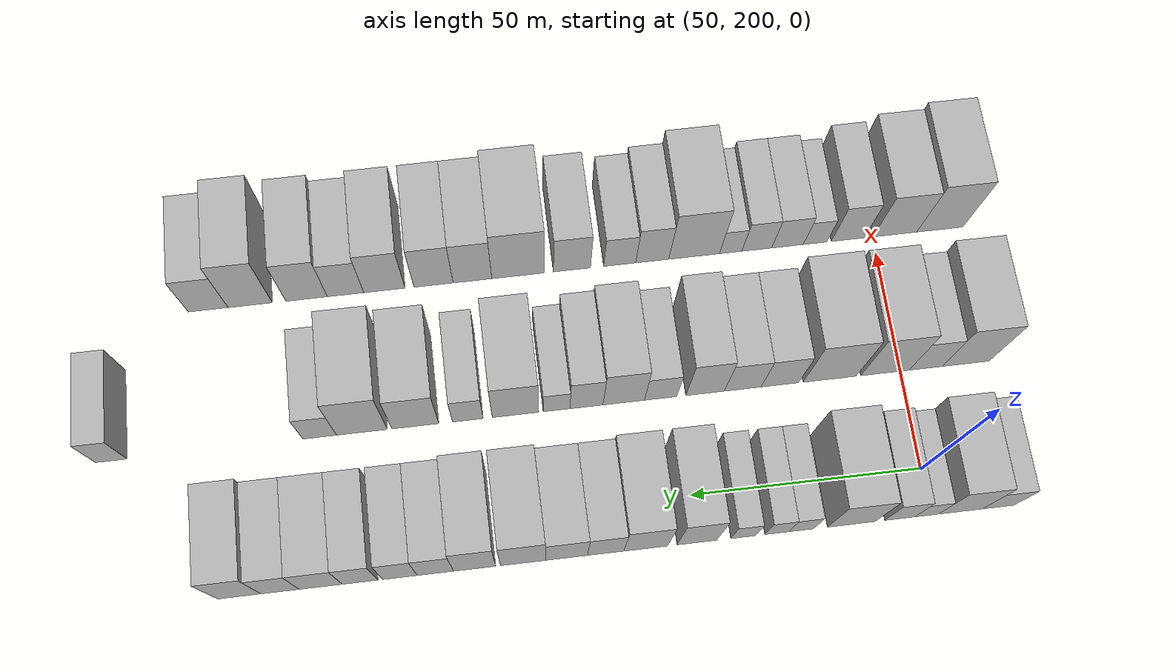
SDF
<sdf version="1.6">
 <world name="default">
  <model name="building_58">
   <static>1</static>
   <pose>50.0000 185.4232 0 0.000000 0.000000 0.000000</pose>
   <link name="link">
    <pose>0 0 7.50 0 0 0</pose>
    <collision name="collision"><geometry><box><size>20.0000 6.7846 15.0000</size></box></geometry></collision>
    <visual name="visual">
     <cast_shadows>0</cast_shadows>
     <geometry><box><size>20.0000 6.7846 15.0000</size></box></geometry>
     <material>
      <script>
       <uri>model://HANNAS_wall/materials/scripts</uri>
       <uri>model://HANNAS_wall/materials/textures</uri>
       <name>vrc/HANNAS_wall</name>
      </script>
     </material>
    </visual>
   </link>
  </model>
  <model name="building_59">
   <static>1</static>
   <pose>50.0000 193.5776 0 0.000000 0.000000 0.000000</pose>
   <link name="link">
    <pose>0 0 10.50 0 0 0</pose>
    <collision name="collision"><geometry><box><size>20.0000 9.5242 21.0000</size></box></geometry></collision>
    <visual name="visual">
     <cast_shadows>0</cast_shadows>
     <geometry><box><size>20.0000 9.5242 21.0000</size></box></geometry>
     <material>
      <script>
       <uri>model://HANNAS_wall/materials/scripts</uri>
       <uri>model://HANNAS_wall/materials/textures</uri>
       <name>vrc/HANNAS_wall</name>
      </script>
     </material>
    </visual>
   </link>
  </model>
  <model name="building_60">
   <static>1</static>
   <pose>50.0000 200.9008 0 0.000000 0.000000 0.000000</pose>
   <link name="link">
    <pose>0 0 6.00 0 0 0</pose>
    <collision name="collision"><geometry><box><size>20.0000 5.1223 12.0000</size></box></geometry></collision>
    <visual name="visual">
     <cast_shadows>0</cast_shadows>
     <geometry><box><size>20.0000 5.1223 12.0000</size></box></geometry>
     <material>
      <script>
       <uri>model://HANNAS_wall/materials/scripts</uri>
       <uri>model://HANNAS_wall/materials/textures</uri>
       <name>vrc/HANNAS_wall</name>
      </script>
     </material>
    </visual>
   </link>
  </model>
  <model name="building_61">
   <static>1</static>
   <pose>50.0000 206.7048 0 0.000000 0.000000 0.000000</pose>
   <link name="link">
    <pose>0 0 7.50 0 0 0</pose>
    <collision name="collision"><geometry><box><size>20.0000 6.4855 15.0000</size></box></geometry></collision>
    <visual name="visual">
     <cast_shadows>0</cast_shadows>
     <geometry><box><size>20.0000 6.4855 15.0000</size></box></geometry>
     <material>
      <script>
       <uri>model://HANNAS_wall/materials/scripts</uri>
       <uri>model://HANNAS_wall/materials/textures</uri>
       <name>vrc/HANNAS_wall</name>
      </script>
     </material>
    </visual>
   </link>
  </model>
  <model name="building_62">
   <static>1</static>
   <pose>50.0000 217.0967 0 0.000000 0.000000 0.000000</pose>
   <link name="link">
    <pose>0 0 10.50 0 0 0</pose>
    <collision name="collision"><geometry><box><size>20.0000 10.2983 21.0000</size></box></geometry></collision>
    <visual name="visual">
     <cast_shadows>0</cast_shadows>
     <geometry><box><size>20.0000 10.2983 21.0000</size></box></geometry>
     <material>
      <script>
       <uri>model://HANNAS_wall/materials/scripts</uri>
       <uri>model://HANNAS_wall/materials/textures</uri>
       <name>vrc/HANNAS_wall</name>
      </script>
     </material>
    </visual>
   </link>
  </model>
  <model name="building_63">
   <static>1</static>
   <pose>50.0000 227.8869 0 0.000000 0.000000 0.000000</pose>
   <link name="link">
    <pose>0 0 6.00 0 0 0</pose>
    <collision name="collision"><geometry><box><size>20.0000 5.2821 12.0000</size></box></geometry></collision>
    <visual name="visual">
     <cast_shadows>0</cast_shadows>
     <geometry><box><size>20.0000 5.2821 12.0000</size></box></geometry>
     <material>
      <script>
       <uri>model://HANNAS_wall/materials/scripts</uri>
       <uri>model://HANNAS_wall/materials/textures</uri>
       <name>vrc/HANNAS_wall</name>
      </script>
     </material>
    </visual>
   </link>
  </model>
  <model name="building_64">
   <static>1</static>
   <pose>50.0000 233.0840 0 0.000000 0.000000 0.000000</pose>
   <link name="link">
    <pose>0 0 6.00 0 0 0</pose>
    <collision name="collision"><geometry><box><size>20.0000 5.1121 12.0000</size></box></geometry></collision>
    <visual name="visual">
     <cast_shadows>0</cast_shadows>
     <geometry><box><size>20.0000 5.1121 12.0000</size></box></geometry>
     <material>
      <script>
       <uri>model://HANNAS_wall/materials/scripts</uri>
       <uri>model://HANNAS_wall/materials/textures</uri>
       <name>vrc/HANNAS_wall</name>
      </script>
     </material>
    </visual>
   </link>
  </model>
  <model name="building_65">
   <static>1</static>
   <pose>50.0000 240.2675 0 0.000000 0.000000 0.000000</pose>
   <link name="link">
    <pose>0 0 6.00 0 0 0</pose>
    <collision name="collision"><geometry><box><size>20.0000 5.2549 12.0000</size></box></geometry></collision>
    <visual name="visual">
     <cast_shadows>0</cast_shadows>
     <geometry><box><size>20.0000 5.2549 12.0000</size></box></geometry>
     <material>
      <script>
       <uri>model://HANNAS_wall/materials/scripts</uri>
       <uri>model://HANNAS_wall/materials/textures</uri>
       <name>vrc/HANNAS_wall</name>
      </script>
     </material>
    </visual>
   </link>
  </model>
  <model name="building_66">
   <static>1</static>
   <pose>50.0000 250.1081 0 0.000000 0.000000 0.000000</pose>
   <link name="link">
    <pose>0 0 10.50 0 0 0</pose>
    <collision name="collision"><geometry><box><size>20.0000 8.4265 21.0000</size></box></geometry></collision>
    <visual name="visual">
     <cast_shadows>0</cast_shadows>
     <geometry><box><size>20.0000 8.4265 21.0000</size></box></geometry>
     <material>
      <script>
       <uri>model://HANNAS_wall/materials/scripts</uri>
       <uri>model://HANNAS_wall/materials/textures</uri>
       <name>vrc/HANNAS_wall</name>
      </script>
     </material>
    </visual>
   </link>
  </model>
  <model name="building_67">
   <static>1</static>
   <pose>50.0000 260.9819 0 0.000000 0.000000 0.000000</pose>
   <link name="link">
    <pose>0 0 10.50 0 0 0</pose>
    <collision name="collision"><geometry><box><size>20.0000 9.3210 21.0000</size></box></geometry></collision>
    <visual name="visual">
     <cast_shadows>0</cast_shadows>
     <geometry><box><size>20.0000 9.3210 21.0000</size></box></geometry>
     <material>
      <script>
       <uri>model://HANNAS_wall/materials/scripts</uri>
       <uri>model://HANNAS_wall/materials/textures</uri>
       <name>vrc/HANNAS_wall</name>
      </script>
     </material>
    </visual>
   </link>
  </model>
  <model name="building_68">
   <static>1</static>
   <pose>50.0000 269.4737 0 0.000000 0.000000 0.000000</pose>
   <link name="link">
    <pose>0 0 9.00 0 0 0</pose>
    <collision name="collision"><geometry><box><size>20.0000 7.6626 18.0000</size></box></geometry></collision>
    <visual name="visual">
     <cast_shadows>0</cast_shadows>
     <geometry><box><size>20.0000 7.6626 18.0000</size></box></geometry>
     <material>
      <script>
       <uri>model://HANNAS_wall/materials/scripts</uri>
       <uri>model://HANNAS_wall/materials/textures</uri>
       <name>vrc/HANNAS_wall</name>
      </script>
     </material>
    </visual>
   </link>
  </model>
  <model name="building_69">
   <static>1</static>
   <pose>50.0000 277.7364 0 0.000000 0.000000 0.000000</pose>
   <link name="link">
    <pose>0 0 9.00 0 0 0</pose>
    <collision name="collision"><geometry><box><size>20.0000 8.8629 18.0000</size></box></geometry></collision>
    <visual name="visual">
     <cast_shadows>0</cast_shadows>
     <geometry><box><size>20.0000 8.8629 18.0000</size></box></geometry>
     <material>
      <script>
       <uri>model://HANNAS_wall/materials/scripts</uri>
       <uri>model://HANNAS_wall/materials/textures</uri>
       <name>vrc/HANNAS_wall</name>
      </script>
     </material>
    </visual>
   </link>
  </model>
  <model name="building_70">
   <static>1</static>
   <pose>50.0000 286.9182 0 0.000000 0.000000 0.000000</pose>
   <link name="link">
    <pose>0 0 10.50 0 0 0</pose>
    <collision name="collision"><geometry><box><size>20.0000 9.5007 21.0000</size></box></geometry></collision>
    <visual name="visual">
     <cast_shadows>0</cast_shadows>
     <geometry><box><size>20.0000 9.5007 21.0000</size></box></geometry>
     <material>
      <script>
       <uri>model://HANNAS_wall/materials/scripts</uri>
       <uri>model://HANNAS_wall/materials/textures</uri>
       <name>vrc/HANNAS_wall</name>
      </script>
     </material>
    </visual>
   </link>
  </model>
  <model name="building_71">
   <static>1</static>
   <pose>50.0000 297.1002 0 0.000000 0.000000 0.000000</pose>
   <link name="link">
    <pose>0 0 10.50 0 0 0</pose>
    <collision name="collision"><geometry><box><size>20.0000 8.8633 21.0000</size></box></geometry></collision>
    <visual name="visual">
     <cast_shadows>0</cast_shadows>
     <geometry><box><size>20.0000 8.8633 21.0000</size></box></geometry>
     <material>
      <script>
       <uri>model://HANNAS_wall/materials/scripts</uri>
       <uri>model://HANNAS_wall/materials/textures</uri>
       <name>vrc/HANNAS_wall</name>
      </script>
     </material>
    </visual>
   </link>
  </model>
  <model name="building_72">
   <static>1</static>
   <pose>50.0000 305.3325 0 0.000000 0.000000 0.000000</pose>
   <link name="link">
    <pose>0 0 9.00 0 0 0</pose>
    <collision name="collision"><geometry><box><size>20.0000 7.6013 18.0000</size></box></geometry></collision>
    <visual name="visual">
     <cast_shadows>0</cast_shadows>
     <geometry><box><size>20.0000 7.6013 18.0000</size></box></geometry>
     <material>
      <script>
       <uri>model://HANNAS_wall/materials/scripts</uri>
       <uri>model://HANNAS_wall/materials/textures</uri>
       <name>vrc/HANNAS_wall</name>
      </script>
     </material>
    </visual>
   </link>
  </model>
  <model name="building_73">
   <static>1</static>
   <pose>50.0000 312.7372 0 0.000000 0.000000 0.000000</pose>
   <link name="link">
    <pose>0 0 9.00 0 0 0</pose>
    <collision name="collision"><geometry><box><size>20.0000 7.2082 18.0000</size></box></geometry></collision>
    <visual name="visual">
     <cast_shadows>0</cast_shadows>
     <geometry><box><size>20.0000 7.2082 18.0000</size></box></geometry>
     <material>
      <script>
       <uri>model://HANNAS_wall/materials/scripts</uri>
       <uri>model://HANNAS_wall/materials/textures</uri>
       <name>vrc/HANNAS_wall</name>
      </script>
     </material>
    </visual>
   </link>
  </model>
  <model name="building_74">
   <static>1</static>
   <pose>50.0000 321.0583 0 0.000000 0.000000 0.000000</pose>
   <link name="link">
    <pose>0 0 9.00 0 0 0</pose>
    <collision name="collision"><geometry><box><size>20.0000 7.4340 18.0000</size></box></geometry></collision>
    <visual name="visual">
     <cast_shadows>0</cast_shadows>
     <geometry><box><size>20.0000 7.4340 18.0000</size></box></geometry>
     <material>
      <script>
       <uri>model://HANNAS_wall/materials/scripts</uri>
       <uri>model://HANNAS_wall/materials/textures</uri>
       <name>vrc/HANNAS_wall</name>
      </script>
     </material>
    </visual>
   </link>
  </model>
  <model name="building_75">
   <static>1</static>
   <pose>50.0000 329.2575 0 0.000000 0.000000 0.000000</pose>
   <link name="link">
    <pose>0 0 9.00 0 0 0</pose>
    <collision name="collision"><geometry><box><size>20.0000 8.9646 18.0000</size></box></geometry></collision>
    <visual name="visual">
     <cast_shadows>0</cast_shadows>
     <geometry><box><size>20.0000 8.9646 18.0000</size></box></geometry>
     <material>
      <script>
       <uri>model://HANNAS_wall/materials/scripts</uri>
       <uri>model://HANNAS_wall/materials/textures</uri>
       <name>vrc/HANNAS_wall</name>
      </script>
     </material>
    </visual>
   </link>
  </model>
  <model name="building_76">
   <static>1</static>
   <pose>50.0000 337.7094 0 0.000000 0.000000 0.000000</pose>
   <link name="link">
    <pose>0 0 9.00 0 0 0</pose>
    <collision name="collision"><geometry><box><size>20.0000 7.9392 18.0000</size></box></geometry></collision>
    <visual name="visual">
     <cast_shadows>0</cast_shadows>
     <geometry><box><size>20.0000 7.9392 18.0000</size></box></geometry>
     <material>
      <script>
       <uri>model://HANNAS_wall/materials/scripts</uri>
       <uri>model://HANNAS_wall/materials/textures</uri>
       <name>vrc/HANNAS_wall</name>
      </script>
     </material>
    </visual>
   </link>
  </model>
  <model name="building_77">
   <static>1</static>
   <pose>50.0000 346.1670 0 0.000000 0.000000 0.000000</pose>
   <link name="link">
    <pose>0 0 10.50 0 0 0</pose>
    <collision name="collision"><geometry><box><size>20.0000 8.9759 21.0000</size></box></geometry></collision>
    <visual name="visual">
     <cast_shadows>0</cast_shadows>
     <geometry><box><size>20.0000 8.9759 21.0000</size></box></geometry>
     <material>
      <script>
       <uri>model://HANNAS_wall/materials/scripts</uri>
       <uri>model://HANNAS_wall/materials/textures</uri>
       <name>vrc/HANNAS_wall</name>
      </script>
     </material>
    </visual>
   </link>
  </model>
  <model name="building_129">
   <static>1</static>
   <pose>82.0000 185.4447 0 0.000000 0.000000 0.000000</pose>
   <link name="link">
    <pose>0 0 12.00 0 0 0</pose>
    <collision name="collision"><geometry><box><size>20.0000 10.5681 24.0000</size></box></geometry></collision>
    <visual name="visual">
     <cast_shadows>0</cast_shadows>
     <geometry><box><size>20.0000 10.5681 24.0000</size></box></geometry>
     <material>
      <script>
       <uri>model://HANNAS_wall/materials/scripts</uri>
       <uri>model://HANNAS_wall/materials/textures</uri>
       <name>vrc/HANNAS_wall</name>
      </script>
     </material>
    </visual>
   </link>
  </model>
  <model name="building_130">
   <static>1</static>
   <pose>82.0000 194.4169 0 0.000000 0.000000 0.000000</pose>
   <link name="link">
    <pose>0 0 9.00 0 0 0</pose>
    <collision name="collision"><geometry><box><size>20.0000 7.3764 18.0000</size></box></geometry></collision>
    <visual name="visual">
     <cast_shadows>0</cast_shadows>
     <geometry><box><size>20.0000 7.3764 18.0000</size></box></geometry>
     <material>
      <script>
       <uri>model://HANNAS_wall/materials/scripts</uri>
       <uri>model://HANNAS_wall/materials/textures</uri>
       <name>vrc/HANNAS_wall</name>
      </script>
     </material>
    </visual>
   </link>
  </model>
  <model name="building_131">
   <static>1</static>
   <pose>82.0000 203.5030 0 0.000000 0.000000 0.000000</pose>
   <link name="link">
    <pose>0 0 12.00 0 0 0</pose>
    <collision name="collision"><geometry><box><size>20.0000 10.7958 24.0000</size></box></geometry></collision>
    <visual name="visual">
     <cast_shadows>0</cast_shadows>
     <geometry><box><size>20.0000 10.7958 24.0000</size></box></geometry>
     <material>
      <script>
       <uri>model://HANNAS_wall/materials/scripts</uri>
       <uri>model://HANNAS_wall/materials/textures</uri>
       <name>vrc/HANNAS_wall</name>
      </script>
     </material>
    </visual>
   </link>
  </model>
  <model name="building_132">
   <static>1</static>
   <pose>82.0000 215.8024 0 0.000000 0.000000 0.000000</pose>
   <link name="link">
    <pose>0 0 12.00 0 0 0</pose>
    <collision name="collision"><geometry><box><size>20.0000 11.8030 24.0000</size></box></geometry></collision>
    <visual name="visual">
     <cast_shadows>0</cast_shadows>
     <geometry><box><size>20.0000 11.8030 24.0000</size></box></geometry>
     <material>
      <script>
       <uri>model://HANNAS_wall/materials/scripts</uri>
       <uri>model://HANNAS_wall/materials/textures</uri>
       <name>vrc/HANNAS_wall</name>
      </script>
     </material>
    </visual>
   </link>
  </model>
  <model name="building_133">
   <static>1</static>
   <pose>82.0000 226.8638 0 0.000000 0.000000 0.000000</pose>
   <link name="link">
    <pose>0 0 9.00 0 0 0</pose>
    <collision name="collision"><geometry><box><size>20.0000 8.3197 18.0000</size></box></geometry></collision>
    <visual name="visual">
     <cast_shadows>0</cast_shadows>
     <geometry><box><size>20.0000 8.3197 18.0000</size></box></geometry>
     <material>
      <script>
       <uri>model://HANNAS_wall/materials/scripts</uri>
       <uri>model://HANNAS_wall/materials/textures</uri>
       <name>vrc/HANNAS_wall</name>
      </script>
     </material>
    </visual>
   </link>
  </model>
  <model name="building_134">
   <static>1</static>
   <pose>82.0000 235.0988 0 0.000000 0.000000 0.000000</pose>
   <link name="link">
    <pose>0 0 9.00 0 0 0</pose>
    <collision name="collision"><geometry><box><size>20.0000 8.1504 18.0000</size></box></geometry></collision>
    <visual name="visual">
     <cast_shadows>0</cast_shadows>
     <geometry><box><size>20.0000 8.1504 18.0000</size></box></geometry>
     <material>
      <script>
       <uri>model://HANNAS_wall/materials/scripts</uri>
       <uri>model://HANNAS_wall/materials/textures</uri>
       <name>vrc/HANNAS_wall</name>
      </script>
     </material>
    </visual>
   </link>
  </model>
  <model name="building_135">
   <static>1</static>
   <pose>82.0000 243.4073 0 0.000000 0.000000 0.000000</pose>
   <link name="link">
    <pose>0 0 10.50 0 0 0</pose>
    <collision name="collision"><geometry><box><size>20.0000 8.4666 21.0000</size></box></geometry></collision>
    <visual name="visual">
     <cast_shadows>0</cast_shadows>
     <geometry><box><size>20.0000 8.4666 21.0000</size></box></geometry>
     <material>
      <script>
       <uri>model://HANNAS_wall/materials/scripts</uri>
       <uri>model://HANNAS_wall/materials/textures</uri>
       <name>vrc/HANNAS_wall</name>
      </script>
     </material>
    </visual>
   </link>
  </model>
  <model name="building_136">
   <static>1</static>
   <pose>82.0000 253.1971 0 0.000000 0.000000 0.000000</pose>
   <link name="link">
    <pose>0 0 7.50 0 0 0</pose>
    <collision name="collision"><geometry><box><size>20.0000 7.1131 15.0000</size></box></geometry></collision>
    <visual name="visual">
     <cast_shadows>0</cast_shadows>
     <geometry><box><size>20.0000 7.1131 15.0000</size></box></geometry>
     <material>
      <script>
       <uri>model://HANNAS_wall/materials/scripts</uri>
       <uri>model://HANNAS_wall/materials/textures</uri>
       <name>vrc/HANNAS_wall</name>
      </script>
     </material>
    </visual>
   </link>
  </model>
  <model name="building_137">
   <static>1</static>
   <pose>82.0000 261.3090 0 0.000000 0.000000 0.000000</pose>
   <link name="link">
    <pose>0 0 10.50 0 0 0</pose>
    <collision name="collision"><geometry><box><size>20.0000 9.1106 21.0000</size></box></geometry></collision>
    <visual name="visual">
     <cast_shadows>0</cast_shadows>
     <geometry><box><size>20.0000 9.1106 21.0000</size></box></geometry>
     <material>
      <script>
       <uri>model://HANNAS_wall/materials/scripts</uri>
       <uri>model://HANNAS_wall/materials/textures</uri>
       <name>vrc/HANNAS_wall</name>
      </script>
     </material>
    </visual>
   </link>
  </model>
  <model name="building_138">
   <static>1</static>
   <pose>82.0000 269.4827 0 0.000000 0.000000 0.000000</pose>
   <link name="link">
    <pose>0 0 9.00 0 0 0</pose>
    <collision name="collision"><geometry><box><size>20.0000 7.2368 18.0000</size></box></geometry></collision>
    <visual name="visual">
     <cast_shadows>0</cast_shadows>
     <geometry><box><size>20.0000 7.2368 18.0000</size></box></geometry>
     <material>
      <script>
       <uri>model://HANNAS_wall/materials/scripts</uri>
       <uri>model://HANNAS_wall/materials/textures</uri>
       <name>vrc/HANNAS_wall</name>
      </script>
     </material>
    </visual>
   </link>
  </model>
  <model name="building_139">
   <static>1</static>
   <pose>82.0000 276.0170 0 0.000000 0.000000 0.000000</pose>
   <link name="link">
    <pose>0 0 6.00 0 0 0</pose>
    <collision name="collision"><geometry><box><size>20.0000 5.8317 12.0000</size></box></geometry></collision>
    <visual name="visual">
     <cast_shadows>0</cast_shadows>
     <geometry><box><size>20.0000 5.8317 12.0000</size></box></geometry>
     <material>
      <script>
       <uri>model://HANNAS_wall/materials/scripts</uri>
       <uri>model://HANNAS_wall/materials/textures</uri>
       <name>vrc/HANNAS_wall</name>
      </script>
     </material>
    </visual>
   </link>
  </model>
  <model name="building_140">
   <static>1</static>
   <pose>82.0000 284.9905 0 0.000000 0.000000 0.000000</pose>
   <link name="link">
    <pose>0 0 10.50 0 0 0</pose>
    <collision name="collision"><geometry><box><size>20.0000 10.1153 21.0000</size></box></geometry></collision>
    <visual name="visual">
     <cast_shadows>0</cast_shadows>
     <geometry><box><size>20.0000 10.1153 21.0000</size></box></geometry>
     <material>
      <script>
       <uri>model://HANNAS_wall/materials/scripts</uri>
       <uri>model://HANNAS_wall/materials/textures</uri>
       <name>vrc/HANNAS_wall</name>
      </script>
     </material>
    </visual>
   </link>
  </model>
  <model name="building_141">
   <static>1</static>
   <pose>82.0000 295.3681 0 0.000000 0.000000 0.000000</pose>
   <link name="link">
    <pose>0 0 7.50 0 0 0</pose>
    <collision name="collision"><geometry><box><size>20.0000 6.6398 15.0000</size></box></geometry></collision>
    <visual name="visual">
     <cast_shadows>0</cast_shadows>
     <geometry><box><size>20.0000 6.6398 15.0000</size></box></geometry>
     <material>
      <script>
       <uri>model://HANNAS_wall/materials/scripts</uri>
       <uri>model://HANNAS_wall/materials/textures</uri>
       <name>vrc/HANNAS_wall</name>
      </script>
     </material>
    </visual>
   </link>
  </model>
  <model name="building_142">
   <static>1</static>
   <pose>82.0000 306.7674 0 0.000000 0.000000 0.000000</pose>
   <link name="link">
    <pose>0 0 10.50 0 0 0</pose>
    <collision name="collision"><geometry><box><size>20.0000 10.1589 21.0000</size></box></geometry></collision>
    <visual name="visual">
     <cast_shadows>0</cast_shadows>
     <geometry><box><size>20.0000 10.1589 21.0000</size></box></geometry>
     <material>
      <script>
       <uri>model://HANNAS_wall/materials/scripts</uri>
       <uri>model://HANNAS_wall/materials/textures</uri>
       <name>vrc/HANNAS_wall</name>
      </script>
     </material>
    </visual>
   </link>
  </model>
  <model name="building_143">
   <static>1</static>
   <pose>82.0000 318.3511 0 0.000000 0.000000 0.000000</pose>
   <link name="link">
    <pose>0 0 12.00 0 0 0</pose>
    <collision name="collision"><geometry><box><size>20.0000 11.0084 24.0000</size></box></geometry></collision>
    <visual name="visual">
     <cast_shadows>0</cast_shadows>
     <geometry><box><size>20.0000 11.0084 24.0000</size></box></geometry>
     <material>
      <script>
       <uri>model://HANNAS_wall/materials/scripts</uri>
       <uri>model://HANNAS_wall/materials/textures</uri>
       <name>vrc/HANNAS_wall</name>
      </script>
     </material>
    </visual>
   </link>
  </model>
  <model name="building_144">
   <static>1</static>
   <pose>82.0000 327.4869 0 0.000000 0.000000 0.000000</pose>
   <link name="link">
    <pose>0 0 7.50 0 0 0</pose>
    <collision name="collision"><geometry><box><size>20.0000 7.2632 15.0000</size></box></geometry></collision>
    <visual name="visual">
     <cast_shadows>0</cast_shadows>
     <geometry><box><size>20.0000 7.2632 15.0000</size></box></geometry>
     <material>
      <script>
       <uri>model://HANNAS_wall/materials/scripts</uri>
       <uri>model://HANNAS_wall/materials/textures</uri>
       <name>vrc/HANNAS_wall</name>
      </script>
     </material>
    </visual>
   </link>
  </model>
  <model name="building_145">
   <static>1</static>
   <pose>82.0000 372.2411 0 0.000000 0.000000 0.000000</pose>
   <link name="link">
    <pose>0 0 7.50 0 0 0</pose>
    <collision name="collision"><geometry><box><size>20.0000 6.7484 15.0000</size></box></geometry></collision>
    <visual name="visual">
     <cast_shadows>0</cast_shadows>
     <geometry><box><size>20.0000 6.7484 15.0000</size></box></geometry>
     <material>
      <script>
       <uri>model://HANNAS_wall/materials/scripts</uri>
       <uri>model://HANNAS_wall/materials/textures</uri>
       <name>vrc/HANNAS_wall</name>
      </script>
     </material>
    </visual>
   </link>
  </model>
  <model name="building_206">
   <static>1</static>
   <pose>114.0000 184.3984 0 0.000000 0.000000 0.000000</pose>
   <link name="link">
    <pose>0 0 12.00 0 0 0</pose>
    <collision name="collision"><geometry><box><size>20.0000 10.6852 24.0000</size></box></geometry></collision>
    <visual name="visual">
     <cast_shadows>0</cast_shadows>
     <geometry><box><size>20.0000 10.6852 24.0000</size></box></geometry>
     <material>
      <script>
       <uri>model://HANNAS_wall/materials/scripts</uri>
       <uri>model://HANNAS_wall/materials/textures</uri>
       <name>vrc/HANNAS_wall</name>
      </script>
     </material>
    </visual>
   </link>
  </model>
  <model name="building_207">
   <static>1</static>
   <pose>114.0000 194.8258 0 0.000000 0.000000 0.000000</pose>
   <link name="link">
    <pose>0 0 10.50 0 0 0</pose>
    <collision name="collision"><geometry><box><size>20.0000 10.1697 21.0000</size></box></geometry></collision>
    <visual name="visual">
     <cast_shadows>0</cast_shadows>
     <geometry><box><size>20.0000 10.1697 21.0000</size></box></geometry>
     <material>
      <script>
       <uri>model://HANNAS_wall/materials/scripts</uri>
       <uri>model://HANNAS_wall/materials/textures</uri>
       <name>vrc/HANNAS_wall</name>
      </script>
     </material>
    </visual>
   </link>
  </model>
  <model name="building_208">
   <static>1</static>
   <pose>114.0000 205.7048 0 0.000000 0.000000 0.000000</pose>
   <link name="link">
    <pose>0 0 9.00 0 0 0</pose>
    <collision name="collision"><geometry><box><size>20.0000 7.5882 18.0000</size></box></geometry></collision>
    <visual name="visual">
     <cast_shadows>0</cast_shadows>
     <geometry><box><size>20.0000 7.5882 18.0000</size></box></geometry>
     <material>
      <script>
       <uri>model://HANNAS_wall/materials/scripts</uri>
       <uri>model://HANNAS_wall/materials/textures</uri>
       <name>vrc/HANNAS_wall</name>
      </script>
     </material>
    </visual>
   </link>
  </model>
  <model name="building_209">
   <static>1</static>
   <pose>114.0000 213.2097 0 0.000000 0.000000 0.000000</pose>
   <link name="link">
    <pose>0 0 6.00 0 0 0</pose>
    <collision name="collision"><geometry><box><size>20.0000 5.4216 12.0000</size></box></geometry></collision>
    <visual name="visual">
     <cast_shadows>0</cast_shadows>
     <geometry><box><size>20.0000 5.4216 12.0000</size></box></geometry>
     <material>
      <script>
       <uri>model://HANNAS_wall/materials/scripts</uri>
       <uri>model://HANNAS_wall/materials/textures</uri>
       <name>vrc/HANNAS_wall</name>
      </script>
     </material>
    </visual>
   </link>
  </model>
  <model name="building_210">
   <static>1</static>
   <pose>114.0000 219.5542 0 0.000000 0.000000 0.000000</pose>
   <link name="link">
    <pose>0 0 7.50 0 0 0</pose>
    <collision name="collision"><geometry><box><size>20.0000 7.2676 15.0000</size></box></geometry></collision>
    <visual name="visual">
     <cast_shadows>0</cast_shadows>
     <geometry><box><size>20.0000 7.2676 15.0000</size></box></geometry>
     <material>
      <script>
       <uri>model://HANNAS_wall/materials/scripts</uri>
       <uri>model://HANNAS_wall/materials/textures</uri>
       <name>vrc/HANNAS_wall</name>
      </script>
     </material>
    </visual>
   </link>
  </model>
  <model name="building_211">
   <static>1</static>
   <pose>114.0000 226.6037 0 0.000000 0.000000 0.000000</pose>
   <link name="link">
    <pose>0 0 7.50 0 0 0</pose>
    <collision name="collision"><geometry><box><size>20.0000 6.8312 15.0000</size></box></geometry></collision>
    <visual name="visual">
     <cast_shadows>0</cast_shadows>
     <geometry><box><size>20.0000 6.8312 15.0000</size></box></geometry>
     <material>
      <script>
       <uri>model://HANNAS_wall/materials/scripts</uri>
       <uri>model://HANNAS_wall/materials/textures</uri>
       <name>vrc/HANNAS_wall</name>
      </script>
     </material>
    </visual>
   </link>
  </model>
  <model name="building_212">
   <static>1</static>
   <pose>114.0000 232.5725 0 0.000000 0.000000 0.000000</pose>
   <link name="link">
    <pose>0 0 6.00 0 0 0</pose>
    <collision name="collision"><geometry><box><size>20.0000 5.1066 12.0000</size></box></geometry></collision>
    <visual name="visual">
     <cast_shadows>0</cast_shadows>
     <geometry><box><size>20.0000 5.1066 12.0000</size></box></geometry>
     <material>
      <script>
       <uri>model://HANNAS_wall/materials/scripts</uri>
       <uri>model://HANNAS_wall/materials/textures</uri>
       <name>vrc/HANNAS_wall</name>
      </script>
     </material>
    </visual>
   </link>
  </model>
  <model name="building_213">
   <static>1</static>
   <pose>114.0000 240.9128 0 0.000000 0.000000 0.000000</pose>
   <link name="link">
    <pose>0 0 12.00 0 0 0</pose>
    <collision name="collision"><geometry><box><size>20.0000 11.5739 24.0000</size></box></geometry></collision>
    <visual name="visual">
     <cast_shadows>0</cast_shadows>
     <geometry><box><size>20.0000 11.5739 24.0000</size></box></geometry>
     <material>
      <script>
       <uri>model://HANNAS_wall/materials/scripts</uri>
       <uri>model://HANNAS_wall/materials/textures</uri>
       <name>vrc/HANNAS_wall</name>
      </script>
     </material>
    </visual>
   </link>
  </model>
  <model name="building_214">
   <static>1</static>
   <pose>114.0000 250.4709 0 0.000000 0.000000 0.000000</pose>
   <link name="link">
    <pose>0 0 9.00 0 0 0</pose>
    <collision name="collision"><geometry><box><size>20.0000 7.5424 18.0000</size></box></geometry></collision>
    <visual name="visual">
     <cast_shadows>0</cast_shadows>
     <geometry><box><size>20.0000 7.5424 18.0000</size></box></geometry>
     <material>
      <script>
       <uri>model://HANNAS_wall/materials/scripts</uri>
       <uri>model://HANNAS_wall/materials/textures</uri>
       <name>vrc/HANNAS_wall</name>
      </script>
     </material>
    </visual>
   </link>
  </model>
  <model name="building_215">
   <static>1</static>
   <pose>114.0000 257.8775 0 0.000000 0.000000 0.000000</pose>
   <link name="link">
    <pose>0 0 7.50 0 0 0</pose>
    <collision name="collision"><geometry><box><size>20.0000 7.2709 15.0000</size></box></geometry></collision>
    <visual name="visual">
     <cast_shadows>0</cast_shadows>
     <geometry><box><size>20.0000 7.2709 15.0000</size></box></geometry>
     <material>
      <script>
       <uri>model://HANNAS_wall/materials/scripts</uri>
       <uri>model://HANNAS_wall/materials/textures</uri>
       <name>vrc/HANNAS_wall</name>
      </script>
     </material>
    </visual>
   </link>
  </model>
  <model name="building_216">
   <static>1</static>
   <pose>114.0000 268.7135 0 0.000000 0.000000 0.000000</pose>
   <link name="link">
    <pose>0 0 9.00 0 0 0</pose>
    <collision name="collision"><geometry><box><size>20.0000 8.4010 18.0000</size></box></geometry></collision>
    <visual name="visual">
     <cast_shadows>0</cast_shadows>
     <geometry><box><size>20.0000 8.4010 18.0000</size></box></geometry>
     <material>
      <script>
       <uri>model://HANNAS_wall/materials/scripts</uri>
       <uri>model://HANNAS_wall/materials/textures</uri>
       <name>vrc/HANNAS_wall</name>
      </script>
     </material>
    </visual>
   </link>
  </model>
  <model name="building_217">
   <static>1</static>
   <pose>114.0000 280.8761 0 0.000000 0.000000 0.000000</pose>
   <link name="link">
    <pose>0 0 12.00 0 0 0</pose>
    <collision name="collision"><geometry><box><size>20.0000 11.9241 24.0000</size></box></geometry></collision>
    <visual name="visual">
     <cast_shadows>0</cast_shadows>
     <geometry><box><size>20.0000 11.9241 24.0000</size></box></geometry>
     <material>
      <script>
       <uri>model://HANNAS_wall/materials/scripts</uri>
       <uri>model://HANNAS_wall/materials/textures</uri>
       <name>vrc/HANNAS_wall</name>
      </script>
     </material>
    </visual>
   </link>
  </model>
  <model name="building_218">
   <static>1</static>
   <pose>114.0000 291.1906 0 0.000000 0.000000 0.000000</pose>
   <link name="link">
    <pose>0 0 10.50 0 0 0</pose>
    <collision name="collision"><geometry><box><size>20.0000 8.7049 21.0000</size></box></geometry></collision>
    <visual name="visual">
     <cast_shadows>0</cast_shadows>
     <geometry><box><size>20.0000 8.7049 21.0000</size></box></geometry>
     <material>
      <script>
       <uri>model://HANNAS_wall/materials/scripts</uri>
       <uri>model://HANNAS_wall/materials/textures</uri>
       <name>vrc/HANNAS_wall</name>
      </script>
     </material>
    </visual>
   </link>
  </model>
  <model name="building_219">
   <static>1</static>
   <pose>114.0000 299.9535 0 0.000000 0.000000 0.000000</pose>
   <link name="link">
    <pose>0 0 10.50 0 0 0</pose>
    <collision name="collision"><geometry><box><size>20.0000 8.8210 21.0000</size></box></geometry></collision>
    <visual name="visual">
     <cast_shadows>0</cast_shadows>
     <geometry><box><size>20.0000 8.8210 21.0000</size></box></geometry>
     <material>
      <script>
       <uri>model://HANNAS_wall/materials/scripts</uri>
       <uri>model://HANNAS_wall/materials/textures</uri>
       <name>vrc/HANNAS_wall</name>
      </script>
     </material>
    </visual>
   </link>
  </model>
  <model name="building_220">
   <static>1</static>
   <pose>114.0000 310.9933 0 0.000000 0.000000 0.000000</pose>
   <link name="link">
    <pose>0 0 10.50 0 0 0</pose>
    <collision name="collision"><geometry><box><size>20.0000 9.2587 21.0000</size></box></geometry></collision>
    <visual name="visual">
     <cast_shadows>0</cast_shadows>
     <geometry><box><size>20.0000 9.2587 21.0000</size></box></geometry>
     <material>
      <script>
       <uri>model://HANNAS_wall/materials/scripts</uri>
       <uri>model://HANNAS_wall/materials/textures</uri>
       <name>vrc/HANNAS_wall</name>
      </script>
     </material>
    </visual>
   </link>
  </model>
  <model name="building_221">
   <static>1</static>
   <pose>114.0000 319.7070 0 0.000000 0.000000 0.000000</pose>
   <link name="link">
    <pose>0 0 9.00 0 0 0</pose>
    <collision name="collision"><geometry><box><size>20.0000 8.1687 18.0000</size></box></geometry></collision>
    <visual name="visual">
     <cast_shadows>0</cast_shadows>
     <geometry><box><size>20.0000 8.1687 18.0000</size></box></geometry>
     <material>
      <script>
       <uri>model://HANNAS_wall/materials/scripts</uri>
       <uri>model://HANNAS_wall/materials/textures</uri>
       <name>vrc/HANNAS_wall</name>
      </script>
     </material>
    </visual>
   </link>
  </model>
  <model name="building_222">
   <static>1</static>
   <pose>114.0000 328.4215 0 0.000000 0.000000 0.000000</pose>
   <link name="link">
    <pose>0 0 10.50 0 0 0</pose>
    <collision name="collision"><geometry><box><size>20.0000 9.2602 21.0000</size></box></geometry></collision>
    <visual name="visual">
     <cast_shadows>0</cast_shadows>
     <geometry><box><size>20.0000 9.2602 21.0000</size></box></geometry>
     <material>
      <script>
       <uri>model://HANNAS_wall/materials/scripts</uri>
       <uri>model://HANNAS_wall/materials/textures</uri>
       <name>vrc/HANNAS_wall</name>
      </script>
     </material>
    </visual>
   </link>
  </model>
  <model name="building_223">
   <static>1</static>
   <pose>114.0000 340.9815 0 0.000000 0.000000 0.000000</pose>
   <link name="link">
    <pose>0 0 12.00 0 0 0</pose>
    <collision name="collision"><geometry><box><size>20.0000 9.8598 24.0000</size></box></geometry></collision>
    <visual name="visual">
     <cast_shadows>0</cast_shadows>
     <geometry><box><size>20.0000 9.8598 24.0000</size></box></geometry>
     <material>
      <script>
       <uri>model://HANNAS_wall/materials/scripts</uri>
       <uri>model://HANNAS_wall/materials/textures</uri>
       <name>vrc/HANNAS_wall</name>
      </script>
     </material>
    </visual>
   </link>
  </model>
  <model name="building_224">
   <static>1</static>
   <pose>114.0000 350.3409 0 0.000000 0.000000 0.000000</pose>
   <link name="link">
    <pose>0 0 9.00 0 0 0</pose>
    <collision name="collision"><geometry><box><size>20.0000 8.8590 18.0000</size></box></geometry></collision>
    <visual name="visual">
     <cast_shadows>0</cast_shadows>
     <geometry><box><size>20.0000 8.8590 18.0000</size></box></geometry>
     <material>
      <script>
       <uri>model://HANNAS_wall/materials/scripts</uri>
       <uri>model://HANNAS_wall/materials/textures</uri>
       <name>vrc/HANNAS_wall</name>
      </script>
     </material>
    </visual>
   </link>
  </model>
 </world>
</sdf>
